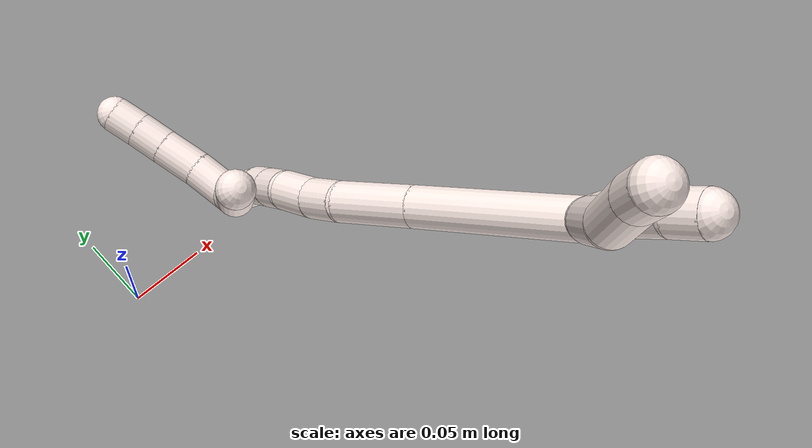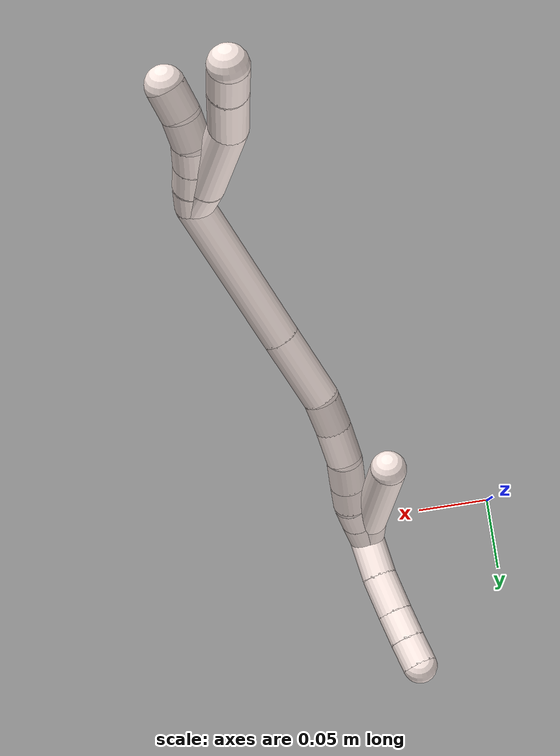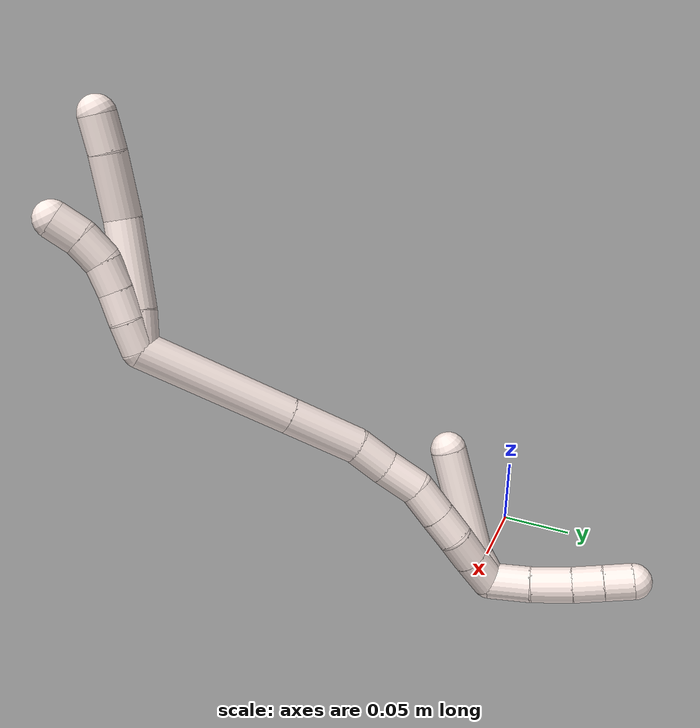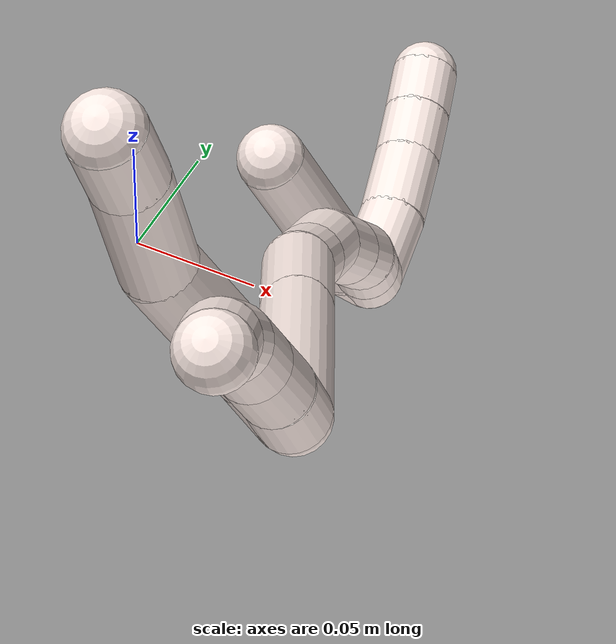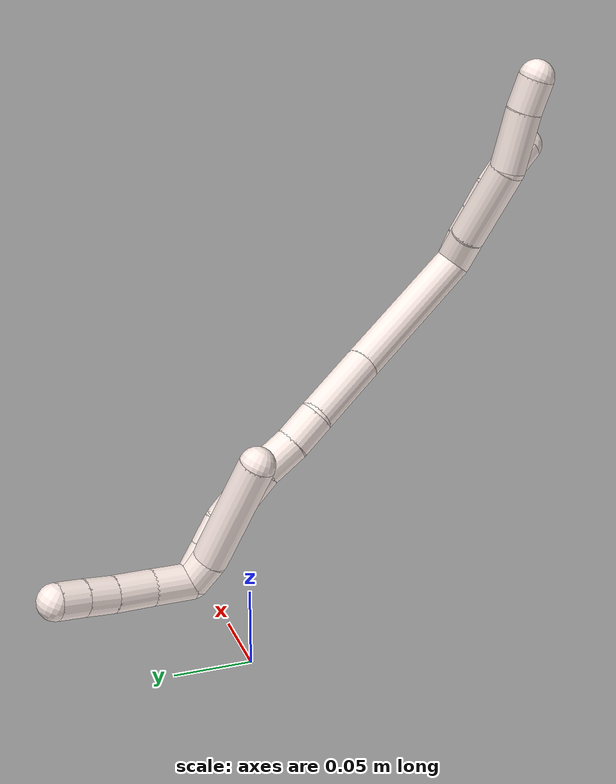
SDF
<sdf version="1.7">
 <world name="default">
  <model name="11">
   <static>0</static>
   <link name="11">
    <collision name="collision-cylinder-e_1_2_8">
     <pose>-0.004346 0.00395 0.010787 -0.351019 -0.361717 0.064831</pose>
     <geometry><cylinder><radius>0.0125</radius><length>0.024563</length></cylinder></geometry>
     <surface>
      <friction><ode><mu>1.16</mu><mu2>1.16</mu2><slip1>0</slip1><slip2>0</slip2></ode></friction>
      <contact><ode><kp>1e+06</kp><kd>1</kd><max_vel>0</max_vel><min_depth>0.001</min_depth></ode></contact>
     </surface>
    </collision>
    <visual name="visual-cylinder-e_1_2_8">
     <pose>-0.004346 0.00395 0.010787 -0.351019 -0.361717 0.064831</pose>
     <geometry><cylinder><radius>0.0125</radius><length>0.024563</length></cylinder></geometry>
     <material><ambient>1 0.933333 0.909804 1</ambient></material>
    </visual>
    <collision name="collision-cylinder-e_2_8_9">
     <pose>-0.017863 0.015188 0.04871 -0.262392 -0.315467 0.04197</pose>
     <geometry><cylinder><radius>0.0125</radius><length>0.059114</length></cylinder></geometry>
     <surface>
      <friction><ode><mu>1.16</mu><mu2>1.16</mu2><slip1>0</slip1><slip2>0</slip2></ode></friction>
      <contact><ode><kp>1e+06</kp><kd>1</kd><max_vel>0</max_vel><min_depth>0.001</min_depth></ode></contact>
     </surface>
    </collision>
    <visual name="visual-cylinder-e_2_8_9">
     <pose>-0.017863 0.015188 0.04871 -0.262392 -0.315467 0.04197</pose>
     <geometry><cylinder><radius>0.0125</radius><length>0.059114</length></cylinder></geometry>
     <material><ambient>1 0.933333 0.909804 1</ambient></material>
    </visual>
    <collision name="collision-cylinder-e_3_9_10">
     <pose>-0.027467 0.028887 0.096122 -0.306222 -0.020416 0.003151</pose>
     <geometry><cylinder><radius>0.0125</radius><length>0.042538</length></cylinder></geometry>
     <surface>
      <friction><ode><mu>1.16</mu><mu2>1.16</mu2><slip1>0</slip1><slip2>0</slip2></ode></friction>
      <contact><ode><kp>1e+06</kp><kd>1</kd><max_vel>0</max_vel><min_depth>0.001</min_depth></ode></contact>
     </surface>
    </collision>
    <visual name="visual-cylinder-e_3_9_10">
     <pose>-0.027467 0.028887 0.096122 -0.306222 -0.020416 0.003151</pose>
     <geometry><cylinder><radius>0.0125</radius><length>0.042538</length></cylinder></geometry>
     <material><ambient>1 0.933333 0.909804 1</ambient></material>
    </visual>
    <collision name="collision-cylinder-e_4_10_6">
     <pose>-0.028742 0.03807 0.127931 -0.235915 -0.0707 0.008382</pose>
     <geometry><cylinder><radius>0.0125</radius><length>0.023784</length></cylinder></geometry>
     <surface>
      <friction><ode><mu>1.16</mu><mu2>1.16</mu2><slip1>0</slip1><slip2>0</slip2></ode></friction>
      <contact><ode><kp>1e+06</kp><kd>1</kd><max_vel>0</max_vel><min_depth>0.001</min_depth></ode></contact>
     </surface>
    </collision>
    <visual name="visual-cylinder-e_4_10_6">
     <pose>-0.028742 0.03807 0.127931 -0.235915 -0.0707 0.008382</pose>
     <geometry><cylinder><radius>0.0125</radius><length>0.023784</length></cylinder></geometry>
     <material><ambient>1 0.933333 0.909804 1</ambient></material>
    </visual>
    <collision name="collision-cylinder-e_1_2_11">
     <pose>-0.000699 0.001073 0.009918 -0.107804 -0.069938 0.003775</pose>
     <geometry><cylinder><radius>0.0125</radius><length>0.02</length></cylinder></geometry>
     <surface>
      <friction><ode><mu>1.16</mu><mu2>1.16</mu2><slip1>0</slip1><slip2>0</slip2></ode></friction>
      <contact><ode><kp>1e+06</kp><kd>1</kd><max_vel>0</max_vel><min_depth>0.001</min_depth></ode></contact>
     </surface>
    </collision>
    <visual name="visual-cylinder-e_1_2_11">
     <pose>-0.000699 0.001073 0.009918 -0.107804 -0.069938 0.003775</pose>
     <geometry><cylinder><radius>0.0125</radius><length>0.02</length></cylinder></geometry>
     <material><ambient>1 0.933333 0.909804 1</ambient></material>
    </visual>
    <collision name="collision-cylinder-e_2_11_12">
     <pose>-0.003108 0.003208 0.029631 -0.107897 -0.171904 0.009306</pose>
     <geometry><cylinder><radius>0.0125</radius><length>0.02</length></cylinder></geometry>
     <surface>
      <friction><ode><mu>1.16</mu><mu2>1.16</mu2><slip1>0</slip1><slip2>0</slip2></ode></friction>
      <contact><ode><kp>1e+06</kp><kd>1</kd><max_vel>0</max_vel><min_depth>0.001</min_depth></ode></contact>
     </surface>
    </collision>
    <visual name="visual-cylinder-e_2_11_12">
     <pose>-0.003108 0.003208 0.029631 -0.107897 -0.171904 0.009306</pose>
     <geometry><cylinder><radius>0.0125</radius><length>0.02</length></cylinder></geometry>
     <material><ambient>1 0.933333 0.909804 1</ambient></material>
    </visual>
    <collision name="collision-cylinder-e_3_12_13">
     <pose>-0.005922 0.004738 0.049354 -0.047252 -0.110542 0.002615</pose>
     <geometry><cylinder><radius>0.0125</radius><length>0.02</length></cylinder></geometry>
     <surface>
      <friction><ode><mu>1.16</mu><mu2>1.16</mu2><slip1>0</slip1><slip2>0</slip2></ode></friction>
      <contact><ode><kp>1e+06</kp><kd>1</kd><max_vel>0</max_vel><min_depth>0.001</min_depth></ode></contact>
     </surface>
    </collision>
    <visual name="visual-cylinder-e_3_12_13">
     <pose>-0.005922 0.004738 0.049354 -0.047252 -0.110542 0.002615</pose>
     <geometry><cylinder><radius>0.0125</radius><length>0.02</length></cylinder></geometry>
     <material><ambient>1 0.933333 0.909804 1</ambient></material>
    </visual>
    <collision name="collision-cylinder-e_4_13_14">
     <pose>-0.006619 0.00279 0.068977 0.244359 0.040585 0.004984</pose>
     <geometry><cylinder><radius>0.0125</radius><length>0.02</length></cylinder></geometry>
     <surface>
      <friction><ode><mu>1.16</mu><mu2>1.16</mu2><slip1>0</slip1><slip2>0</slip2></ode></friction>
      <contact><ode><kp>1e+06</kp><kd>1</kd><max_vel>0</max_vel><min_depth>0.001</min_depth></ode></contact>
     </surface>
    </collision>
    <visual name="visual-cylinder-e_4_13_14">
     <pose>-0.006619 0.00279 0.068977 0.244359 0.040585 0.004984</pose>
     <geometry><cylinder><radius>0.0125</radius><length>0.02</length></cylinder></geometry>
     <material><ambient>1 0.933333 0.909804 1</ambient></material>
    </visual>
    <collision name="collision-cylinder-e_5_14_5">
     <pose>-0.00481 -0.00403 0.08754 0.460817 0.140812 0.033083</pose>
     <geometry><cylinder><radius>0.0125</radius><length>0.02</length></cylinder></geometry>
     <surface>
      <friction><ode><mu>1.16</mu><mu2>1.16</mu2><slip1>0</slip1><slip2>0</slip2></ode></friction>
      <contact><ode><kp>1e+06</kp><kd>1</kd><max_vel>0</max_vel><min_depth>0.001</min_depth></ode></contact>
     </surface>
    </collision>
    <visual name="visual-cylinder-e_5_14_5">
     <pose>-0.00481 -0.00403 0.08754 0.460817 0.140812 0.033083</pose>
     <geometry><cylinder><radius>0.0125</radius><length>0.02</length></cylinder></geometry>
     <material><ambient>1 0.933333 0.909804 1</ambient></material>
    </visual>
    <collision name="collision-cylinder-e_1_2_15">
     <pose>-0.010306 0.029604 -0.043236 -2.54121 -0.194197 0.609723</pose>
     <geometry><cylinder><radius>0.0125</radius><length>0.106807</length></cylinder></geometry>
     <surface>
      <friction><ode><mu>1.16</mu><mu2>1.16</mu2><slip1>0</slip1><slip2>0</slip2></ode></friction>
      <contact><ode><kp>1e+06</kp><kd>1</kd><max_vel>0</max_vel><min_depth>0.001</min_depth></ode></contact>
     </surface>
    </collision>
    <visual name="visual-cylinder-e_1_2_15">
     <pose>-0.010306 0.029604 -0.043236 -2.54121 -0.194197 0.609723</pose>
     <geometry><cylinder><radius>0.0125</radius><length>0.106807</length></cylinder></geometry>
     <material><ambient>1 0.933333 0.909804 1</ambient></material>
    </visual>
    <collision name="collision-cylinder-e_2_15_16">
     <pose>-0.025712 0.073516 -0.107496 -2.54402 -0.197935 0.623698</pose>
     <geometry><cylinder><radius>0.0125</radius><length>0.051875</length></cylinder></geometry>
     <surface>
      <friction><ode><mu>1.16</mu><mu2>1.16</mu2><slip1>0</slip1><slip2>0</slip2></ode></friction>
      <contact><ode><kp>1e+06</kp><kd>1</kd><max_vel>0</max_vel><min_depth>0.001</min_depth></ode></contact>
     </surface>
    </collision>
    <visual name="visual-cylinder-e_2_15_16">
     <pose>-0.025712 0.073516 -0.107496 -2.54402 -0.197935 0.623698</pose>
     <geometry><cylinder><radius>0.0125</radius><length>0.051875</length></cylinder></geometry>
     <material><ambient>1 0.933333 0.909804 1</ambient></material>
    </visual>
    <collision name="collision-cylinder-e_3_16_17">
     <pose>-0.031461 0.093011 -0.13995 -2.71559 -0.051626 0.237626</pose>
     <geometry><cylinder><radius>0.0125</radius><length>0.025136</length></cylinder></geometry>
     <surface>
      <friction><ode><mu>1.16</mu><mu2>1.16</mu2><slip1>0</slip1><slip2>0</slip2></ode></friction>
      <contact><ode><kp>1e+06</kp><kd>1</kd><max_vel>0</max_vel><min_depth>0.001</min_depth></ode></contact>
     </surface>
    </collision>
    <visual name="visual-cylinder-e_3_16_17">
     <pose>-0.031461 0.093011 -0.13995 -2.71559 -0.051626 0.237626</pose>
     <geometry><cylinder><radius>0.0125</radius><length>0.025136</length></cylinder></geometry>
     <material><ambient>1 0.933333 0.909804 1</ambient></material>
    </visual>
    <collision name="collision-cylinder-e_4_17_18">
     <pose>-0.031887 0.10474 -0.162915 -2.6257 0.016801 -0.063661</pose>
     <geometry><cylinder><radius>0.0125</radius><length>0.026527</length></cylinder></geometry>
     <surface>
      <friction><ode><mu>1.16</mu><mu2>1.16</mu2><slip1>0</slip1><slip2>0</slip2></ode></friction>
      <contact><ode><kp>1e+06</kp><kd>1</kd><max_vel>0</max_vel><min_depth>0.001</min_depth></ode></contact>
     </surface>
    </collision>
    <visual name="visual-cylinder-e_4_17_18">
     <pose>-0.031887 0.10474 -0.162915 -2.6257 0.016801 -0.063661</pose>
     <geometry><cylinder><radius>0.0125</radius><length>0.026527</length></cylinder></geometry>
     <material><ambient>1 0.933333 0.909804 1</ambient></material>
    </visual>
    <collision name="collision-cylinder-e_5_18_19">
     <pose>-0.030455 0.113767 -0.186304 -2.9349 0.09951 -0.895225</pose>
     <geometry><cylinder><radius>0.0125</radius><length>0.024344</length></cylinder></geometry>
     <surface>
      <friction><ode><mu>1.16</mu><mu2>1.16</mu2><slip1>0</slip1><slip2>0</slip2></ode></friction>
      <contact><ode><kp>1e+06</kp><kd>1</kd><max_vel>0</max_vel><min_depth>0.001</min_depth></ode></contact>
     </surface>
    </collision>
    <visual name="visual-cylinder-e_5_18_19">
     <pose>-0.030455 0.113767 -0.186304 -2.9349 0.09951 -0.895225</pose>
     <geometry><cylinder><radius>0.0125</radius><length>0.024344</length></cylinder></geometry>
     <material><ambient>1 0.933333 0.909804 1</ambient></material>
    </visual>
    <collision name="collision-cylinder-e_6_19_20">
     <pose>-0.028367 0.118443 -0.208097 -2.92475 0.08608 -0.753502</pose>
     <geometry><cylinder><radius>0.0125</radius><length>0.02043</length></cylinder></geometry>
     <surface>
      <friction><ode><mu>1.16</mu><mu2>1.16</mu2><slip1>0</slip1><slip2>0</slip2></ode></friction>
      <contact><ode><kp>1e+06</kp><kd>1</kd><max_vel>0</max_vel><min_depth>0.001</min_depth></ode></contact>
     </surface>
    </collision>
    <visual name="visual-cylinder-e_6_19_20">
     <pose>-0.028367 0.118443 -0.208097 -2.92475 0.08608 -0.753502</pose>
     <geometry><cylinder><radius>0.0125</radius><length>0.02043</length></cylinder></geometry>
     <material><ambient>1 0.933333 0.909804 1</ambient></material>
    </visual>
    <collision name="collision-cylinder-e_7_20_21">
     <pose>-0.028578 0.121918 -0.228267 -3.0166 -0.105225 1.39911</pose>
     <geometry><cylinder><radius>0.0125</radius><length>0.020737</length></cylinder></geometry>
     <surface>
      <friction><ode><mu>1.16</mu><mu2>1.16</mu2><slip1>0</slip1><slip2>0</slip2></ode></friction>
      <contact><ode><kp>1e+06</kp><kd>1</kd><max_vel>0</max_vel><min_depth>0.001</min_depth></ode></contact>
     </surface>
    </collision>
    <visual name="visual-cylinder-e_7_20_21">
     <pose>-0.028578 0.121918 -0.228267 -3.0166 -0.105225 1.39911</pose>
     <geometry><cylinder><radius>0.0125</radius><length>0.020737</length></cylinder></geometry>
     <material><ambient>1 0.933333 0.909804 1</ambient></material>
    </visual>
    <collision name="collision-cylinder-e_8_21_1">
     <pose>-0.031072 0.125102 -0.250336 -2.98258 -0.116642 1.26485</pose>
     <geometry><cylinder><radius>0.0125</radius><length>0.024144</length></cylinder></geometry>
     <surface>
      <friction><ode><mu>1.16</mu><mu2>1.16</mu2><slip1>0</slip1><slip2>0</slip2></ode></friction>
      <contact><ode><kp>1e+06</kp><kd>1</kd><max_vel>0</max_vel><min_depth>0.001</min_depth></ode></contact>
     </surface>
    </collision>
    <visual name="visual-cylinder-e_8_21_1">
     <pose>-0.031072 0.125102 -0.250336 -2.98258 -0.116642 1.26485</pose>
     <geometry><cylinder><radius>0.0125</radius><length>0.024144</length></cylinder></geometry>
     <material><ambient>1 0.933333 0.909804 1</ambient></material>
    </visual>
    <collision name="collision-cylinder-e_1_1_22">
     <pose>-0.030233 0.140396 -0.267968 -1.97899 0.152575 -0.231628</pose>
     <geometry><cylinder><radius>0.0125</radius><length>0.029533</length></cylinder></geometry>
     <surface>
      <friction><ode><mu>1.16</mu><mu2>1.16</mu2><slip1>0</slip1><slip2>0</slip2></ode></friction>
      <contact><ode><kp>1e+06</kp><kd>1</kd><max_vel>0</max_vel><min_depth>0.001</min_depth></ode></contact>
     </surface>
    </collision>
    <visual name="visual-cylinder-e_1_1_22">
     <pose>-0.030233 0.140396 -0.267968 -1.97899 0.152575 -0.231628</pose>
     <geometry><cylinder><radius>0.0125</radius><length>0.029533</length></cylinder></geometry>
     <material><ambient>1 0.933333 0.909804 1</ambient></material>
    </visual>
    <collision name="collision-cylinder-e_2_22_23">
     <pose>-0.027 0.167197 -0.278757 -1.92753 0.06897 -0.099266</pose>
     <geometry><cylinder><radius>0.0125</radius><length>0.028679</length></cylinder></geometry>
     <surface>
      <friction><ode><mu>1.16</mu><mu2>1.16</mu2><slip1>0</slip1><slip2>0</slip2></ode></friction>
      <contact><ode><kp>1e+06</kp><kd>1</kd><max_vel>0</max_vel><min_depth>0.001</min_depth></ode></contact>
     </surface>
    </collision>
    <visual name="visual-cylinder-e_2_22_23">
     <pose>-0.027 0.167197 -0.278757 -1.92753 0.06897 -0.099266</pose>
     <geometry><cylinder><radius>0.0125</radius><length>0.028679</length></cylinder></geometry>
     <material><ambient>1 0.933333 0.909804 1</ambient></material>
    </visual>
    <collision name="collision-cylinder-e_3_23_24">
     <pose>-0.025382 0.190915 -0.286798 -1.85786 0.058519 -0.078274</pose>
     <geometry><cylinder><radius>0.0125</radius><length>0.021545</length></cylinder></geometry>
     <surface>
      <friction><ode><mu>1.16</mu><mu2>1.16</mu2><slip1>0</slip1><slip2>0</slip2></ode></friction>
      <contact><ode><kp>1e+06</kp><kd>1</kd><max_vel>0</max_vel><min_depth>0.001</min_depth></ode></contact>
     </surface>
    </collision>
    <visual name="visual-cylinder-e_3_23_24">
     <pose>-0.025382 0.190915 -0.286798 -1.85786 0.058519 -0.078274</pose>
     <geometry><cylinder><radius>0.0125</radius><length>0.021545</length></cylinder></geometry>
     <material><ambient>1 0.933333 0.909804 1</ambient></material>
    </visual>
    <collision name="collision-cylinder-e_4_24_4">
     <pose>-0.024365 0.210903 -0.292793 -1.86681 0.038216 -0.051604</pose>
     <geometry><cylinder><radius>0.0125</radius><length>0.020244</length></cylinder></geometry>
     <surface>
      <friction><ode><mu>1.16</mu><mu2>1.16</mu2><slip1>0</slip1><slip2>0</slip2></ode></friction>
      <contact><ode><kp>1e+06</kp><kd>1</kd><max_vel>0</max_vel><min_depth>0.001</min_depth></ode></contact>
     </surface>
    </collision>
    <visual name="visual-cylinder-e_4_24_4">
     <pose>-0.024365 0.210903 -0.292793 -1.86681 0.038216 -0.051604</pose>
     <geometry><cylinder><radius>0.0125</radius><length>0.020244</length></cylinder></geometry>
     <material><ambient>1 0.933333 0.909804 1</ambient></material>
    </visual>
    <collision name="collision-cylinder-e_1_1_25">
     <pose>-0.034982 0.126221 -0.252213 0.078071 -0.245695 -0.009644</pose>
     <geometry><cylinder><radius>0.0125</radius><length>0.020602</length></cylinder></geometry>
     <surface>
      <friction><ode><mu>1.16</mu><mu2>1.16</mu2><slip1>0</slip1><slip2>0</slip2></ode></friction>
      <contact><ode><kp>1e+06</kp><kd>1</kd><max_vel>0</max_vel><min_depth>0.001</min_depth></ode></contact>
     </surface>
    </collision>
    <visual name="visual-cylinder-e_1_1_25">
     <pose>-0.034982 0.126221 -0.252213 0.078071 -0.245695 -0.009644</pose>
     <geometry><cylinder><radius>0.0125</radius><length>0.020602</length></cylinder></geometry>
     <material><ambient>1 0.933333 0.909804 1</ambient></material>
    </visual>
    <collision name="collision-cylinder-e_2_25_3">
     <pose>-0.044837 0.132276 -0.203843 -0.176099 -0.186181 0.016483</pose>
     <geometry><cylinder><radius>0.0125</radius><length>0.079398</length></cylinder></geometry>
     <surface>
      <friction><ode><mu>1.16</mu><mu2>1.16</mu2><slip1>0</slip1><slip2>0</slip2></ode></friction>
      <contact><ode><kp>1e+06</kp><kd>1</kd><max_vel>0</max_vel><min_depth>0.001</min_depth></ode></contact>
     </surface>
    </collision>
    <visual name="visual-cylinder-e_2_25_3">
     <pose>-0.044837 0.132276 -0.203843 -0.176099 -0.186181 0.016483</pose>
     <geometry><cylinder><radius>0.0125</radius><length>0.079398</length></cylinder></geometry>
     <material><ambient>1 0.933333 0.909804 1</ambient></material>
    </visual>
    <collision name="collision-sphere-3">
     <pose>-0.052185 0.139111 -0.165433 0 -0 0</pose>
     <geometry><sphere><radius>0.0125</radius></sphere></geometry>
     <surface>
      <friction><ode><mu>1.16</mu><mu2>1.16</mu2><slip1>0</slip1><slip2>0</slip2></ode></friction>
      <contact><ode><kp>1e+06</kp><kd>1</kd><max_vel>0</max_vel><min_depth>0.001</min_depth></ode></contact>
     </surface>
    </collision>
    <visual name="visual-sphere-3">
     <pose>-0.052185 0.139111 -0.165433 0 -0 0</pose>
     <geometry><sphere><radius>0.0125</radius></sphere></geometry>
     <material><ambient>1 0.933333 0.909804 1</ambient></material>
    </visual>
    <collision name="collision-sphere-25">
     <pose>-0.037488 0.125442 -0.242252 0 -0 0</pose>
     <geometry><sphere><radius>0.0125</radius></sphere></geometry>
     <surface>
      <friction><ode><mu>1.16</mu><mu2>1.16</mu2><slip1>0</slip1><slip2>0</slip2></ode></friction>
      <contact><ode><kp>1e+06</kp><kd>1</kd><max_vel>0</max_vel><min_depth>0.001</min_depth></ode></contact>
     </surface>
    </collision>
    <visual name="visual-sphere-25">
     <pose>-0.037488 0.125442 -0.242252 0 -0 0</pose>
     <geometry><sphere><radius>0.0125</radius></sphere></geometry>
     <material><ambient>1 0.933333 0.909804 1</ambient></material>
    </visual>
    <collision name="collision-sphere-4">
     <pose>-0.023978 0.220578 -0.295743 0 -0 0</pose>
     <geometry><sphere><radius>0.0125</radius></sphere></geometry>
     <surface>
      <friction><ode><mu>1.16</mu><mu2>1.16</mu2><slip1>0</slip1><slip2>0</slip2></ode></friction>
      <contact><ode><kp>1e+06</kp><kd>1</kd><max_vel>0</max_vel><min_depth>0.001</min_depth></ode></contact>
     </surface>
    </collision>
    <visual name="visual-sphere-4">
     <pose>-0.023978 0.220578 -0.295743 0 -0 0</pose>
     <geometry><sphere><radius>0.0125</radius></sphere></geometry>
     <material><ambient>1 0.933333 0.909804 1</ambient></material>
    </visual>
    <collision name="collision-sphere-24">
     <pose>-0.024752 0.201229 -0.289842 0 -0 0</pose>
     <geometry><sphere><radius>0.0125</radius></sphere></geometry>
     <surface>
      <friction><ode><mu>1.16</mu><mu2>1.16</mu2><slip1>0</slip1><slip2>0</slip2></ode></friction>
      <contact><ode><kp>1e+06</kp><kd>1</kd><max_vel>0</max_vel><min_depth>0.001</min_depth></ode></contact>
     </surface>
    </collision>
    <visual name="visual-sphere-24">
     <pose>-0.024752 0.201229 -0.289842 0 -0 0</pose>
     <geometry><sphere><radius>0.0125</radius></sphere></geometry>
     <material><ambient>1 0.933333 0.909804 1</ambient></material>
    </visual>
    <collision name="collision-sphere-23">
     <pose>-0.026012 0.180601 -0.283753 0 -0 0</pose>
     <geometry><sphere><radius>0.0125</radius></sphere></geometry>
     <surface>
      <friction><ode><mu>1.16</mu><mu2>1.16</mu2><slip1>0</slip1><slip2>0</slip2></ode></friction>
      <contact><ode><kp>1e+06</kp><kd>1</kd><max_vel>0</max_vel><min_depth>0.001</min_depth></ode></contact>
     </surface>
    </collision>
    <visual name="visual-sphere-23">
     <pose>-0.026012 0.180601 -0.283753 0 -0 0</pose>
     <geometry><sphere><radius>0.0125</radius></sphere></geometry>
     <material><ambient>1 0.933333 0.909804 1</ambient></material>
    </visual>
    <collision name="collision-sphere-22">
     <pose>-0.027988 0.153792 -0.273762 0 -0 0</pose>
     <geometry><sphere><radius>0.0125</radius></sphere></geometry>
     <surface>
      <friction><ode><mu>1.16</mu><mu2>1.16</mu2><slip1>0</slip1><slip2>0</slip2></ode></friction>
      <contact><ode><kp>1e+06</kp><kd>1</kd><max_vel>0</max_vel><min_depth>0.001</min_depth></ode></contact>
     </surface>
    </collision>
    <visual name="visual-sphere-22">
     <pose>-0.027988 0.153792 -0.273762 0 -0 0</pose>
     <geometry><sphere><radius>0.0125</radius></sphere></geometry>
     <material><ambient>1 0.933333 0.909804 1</ambient></material>
    </visual>
    <collision name="collision-sphere-1">
     <pose>-0.032477 0.127 -0.262175 0 -0 0</pose>
     <geometry><sphere><radius>0.0125</radius></sphere></geometry>
     <surface>
      <friction><ode><mu>1.16</mu><mu2>1.16</mu2><slip1>0</slip1><slip2>0</slip2></ode></friction>
      <contact><ode><kp>1e+06</kp><kd>1</kd><max_vel>0</max_vel><min_depth>0.001</min_depth></ode></contact>
     </surface>
    </collision>
    <visual name="visual-sphere-1">
     <pose>-0.032477 0.127 -0.262175 0 -0 0</pose>
     <geometry><sphere><radius>0.0125</radius></sphere></geometry>
     <material><ambient>1 0.933333 0.909804 1</ambient></material>
    </visual>
    <collision name="collision-sphere-21">
     <pose>-0.029667 0.123203 -0.238497 0 -0 0</pose>
     <geometry><sphere><radius>0.0125</radius></sphere></geometry>
     <surface>
      <friction><ode><mu>1.16</mu><mu2>1.16</mu2><slip1>0</slip1><slip2>0</slip2></ode></friction>
      <contact><ode><kp>1e+06</kp><kd>1</kd><max_vel>0</max_vel><min_depth>0.001</min_depth></ode></contact>
     </surface>
    </collision>
    <visual name="visual-sphere-21">
     <pose>-0.029667 0.123203 -0.238497 0 -0 0</pose>
     <geometry><sphere><radius>0.0125</radius></sphere></geometry>
     <material><ambient>1 0.933333 0.909804 1</ambient></material>
    </visual>
    <collision name="collision-sphere-11">
     <pose>-0.001398 0.002147 0.019835 0 -0 0</pose>
     <geometry><sphere><radius>0.0125</radius></sphere></geometry>
     <surface>
      <friction><ode><mu>1.16</mu><mu2>1.16</mu2><slip1>0</slip1><slip2>0</slip2></ode></friction>
      <contact><ode><kp>1e+06</kp><kd>1</kd><max_vel>0</max_vel><min_depth>0.001</min_depth></ode></contact>
     </surface>
    </collision>
    <visual name="visual-sphere-11">
     <pose>-0.001398 0.002147 0.019835 0 -0 0</pose>
     <geometry><sphere><radius>0.0125</radius></sphere></geometry>
     <material><ambient>1 0.933333 0.909804 1</ambient></material>
    </visual>
    <collision name="collision-sphere-6">
     <pose>-0.029582 0.040843 0.139465 0 -0 0</pose>
     <geometry><sphere><radius>0.0125</radius></sphere></geometry>
     <surface>
      <friction><ode><mu>1.16</mu><mu2>1.16</mu2><slip1>0</slip1><slip2>0</slip2></ode></friction>
      <contact><ode><kp>1e+06</kp><kd>1</kd><max_vel>0</max_vel><min_depth>0.001</min_depth></ode></contact>
     </surface>
    </collision>
    <visual name="visual-sphere-6">
     <pose>-0.029582 0.040843 0.139465 0 -0 0</pose>
     <geometry><sphere><radius>0.0125</radius></sphere></geometry>
     <material><ambient>1 0.933333 0.909804 1</ambient></material>
    </visual>
    <collision name="collision-sphere-10">
     <pose>-0.027902 0.035298 0.116397 0 -0 0</pose>
     <geometry><sphere><radius>0.0125</radius></sphere></geometry>
     <surface>
      <friction><ode><mu>1.16</mu><mu2>1.16</mu2><slip1>0</slip1><slip2>0</slip2></ode></friction>
      <contact><ode><kp>1e+06</kp><kd>1</kd><max_vel>0</max_vel><min_depth>0.001</min_depth></ode></contact>
     </surface>
    </collision>
    <visual name="visual-sphere-10">
     <pose>-0.027902 0.035298 0.116397 0 -0 0</pose>
     <geometry><sphere><radius>0.0125</radius></sphere></geometry>
     <material><ambient>1 0.933333 0.909804 1</ambient></material>
    </visual>
    <collision name="collision-sphere-9">
     <pose>-0.027033 0.022477 0.075846 0 -0 0</pose>
     <geometry><sphere><radius>0.0125</radius></sphere></geometry>
     <surface>
      <friction><ode><mu>1.16</mu><mu2>1.16</mu2><slip1>0</slip1><slip2>0</slip2></ode></friction>
      <contact><ode><kp>1e+06</kp><kd>1</kd><max_vel>0</max_vel><min_depth>0.001</min_depth></ode></contact>
     </surface>
    </collision>
    <visual name="visual-sphere-9">
     <pose>-0.027033 0.022477 0.075846 0 -0 0</pose>
     <geometry><sphere><radius>0.0125</radius></sphere></geometry>
     <material><ambient>1 0.933333 0.909804 1</ambient></material>
    </visual>
    <collision name="collision-sphere-2">
     <geometry><sphere><radius>0.0125</radius></sphere></geometry>
     <surface>
      <friction><ode><mu>1.16</mu><mu2>1.16</mu2><slip1>0</slip1><slip2>0</slip2></ode></friction>
      <contact><ode><kp>1e+06</kp><kd>1</kd><max_vel>0</max_vel><min_depth>0.001</min_depth></ode></contact>
     </surface>
    </collision>
    <visual name="visual-sphere-2">
     <geometry><sphere><radius>0.0125</radius></sphere></geometry>
     <material><ambient>1 0.933333 0.909804 1</ambient></material>
    </visual>
    <collision name="collision-sphere-19">
     <pose>-0.029245 0.116253 -0.198158 0 -0 0</pose>
     <geometry><sphere><radius>0.0125</radius></sphere></geometry>
     <surface>
      <friction><ode><mu>1.16</mu><mu2>1.16</mu2><slip1>0</slip1><slip2>0</slip2></ode></friction>
      <contact><ode><kp>1e+06</kp><kd>1</kd><max_vel>0</max_vel><min_depth>0.001</min_depth></ode></contact>
     </surface>
    </collision>
    <visual name="visual-sphere-19">
     <pose>-0.029245 0.116253 -0.198158 0 -0 0</pose>
     <geometry><sphere><radius>0.0125</radius></sphere></geometry>
     <material><ambient>1 0.933333 0.909804 1</ambient></material>
    </visual>
    <collision name="collision-sphere-8">
     <pose>-0.008693 0.0079 0.021573 0 -0 0</pose>
     <geometry><sphere><radius>0.0125</radius></sphere></geometry>
     <surface>
      <friction><ode><mu>1.16</mu><mu2>1.16</mu2><slip1>0</slip1><slip2>0</slip2></ode></friction>
      <contact><ode><kp>1e+06</kp><kd>1</kd><max_vel>0</max_vel><min_depth>0.001</min_depth></ode></contact>
     </surface>
    </collision>
    <visual name="visual-sphere-8">
     <pose>-0.008693 0.0079 0.021573 0 -0 0</pose>
     <geometry><sphere><radius>0.0125</radius></sphere></geometry>
     <material><ambient>1 0.933333 0.909804 1</ambient></material>
    </visual>
    <collision name="collision-sphere-12">
     <pose>-0.004819 0.004269 0.039426 0 -0 0</pose>
     <geometry><sphere><radius>0.0125</radius></sphere></geometry>
     <surface>
      <friction><ode><mu>1.16</mu><mu2>1.16</mu2><slip1>0</slip1><slip2>0</slip2></ode></friction>
      <contact><ode><kp>1e+06</kp><kd>1</kd><max_vel>0</max_vel><min_depth>0.001</min_depth></ode></contact>
     </surface>
    </collision>
    <visual name="visual-sphere-12">
     <pose>-0.004819 0.004269 0.039426 0 -0 0</pose>
     <geometry><sphere><radius>0.0125</radius></sphere></geometry>
     <material><ambient>1 0.933333 0.909804 1</ambient></material>
    </visual>
    <collision name="collision-sphere-13">
     <pose>-0.007025 0.005208 0.059282 0 -0 0</pose>
     <geometry><sphere><radius>0.0125</radius></sphere></geometry>
     <surface>
      <friction><ode><mu>1.16</mu><mu2>1.16</mu2><slip1>0</slip1><slip2>0</slip2></ode></friction>
      <contact><ode><kp>1e+06</kp><kd>1</kd><max_vel>0</max_vel><min_depth>0.001</min_depth></ode></contact>
     </surface>
    </collision>
    <visual name="visual-sphere-13">
     <pose>-0.007025 0.005208 0.059282 0 -0 0</pose>
     <geometry><sphere><radius>0.0125</radius></sphere></geometry>
     <material><ambient>1 0.933333 0.909804 1</ambient></material>
    </visual>
    <collision name="collision-sphere-14">
     <pose>-0.006214 0.000373 0.078672 0 -0 0</pose>
     <geometry><sphere><radius>0.0125</radius></sphere></geometry>
     <surface>
      <friction><ode><mu>1.16</mu><mu2>1.16</mu2><slip1>0</slip1><slip2>0</slip2></ode></friction>
      <contact><ode><kp>1e+06</kp><kd>1</kd><max_vel>0</max_vel><min_depth>0.001</min_depth></ode></contact>
     </surface>
    </collision>
    <visual name="visual-sphere-14">
     <pose>-0.006214 0.000373 0.078672 0 -0 0</pose>
     <geometry><sphere><radius>0.0125</radius></sphere></geometry>
     <material><ambient>1 0.933333 0.909804 1</ambient></material>
    </visual>
    <collision name="collision-sphere-5">
     <pose>-0.003407 -0.008433 0.096408 0 -0 0</pose>
     <geometry><sphere><radius>0.0125</radius></sphere></geometry>
     <surface>
      <friction><ode><mu>1.16</mu><mu2>1.16</mu2><slip1>0</slip1><slip2>0</slip2></ode></friction>
      <contact><ode><kp>1e+06</kp><kd>1</kd><max_vel>0</max_vel><min_depth>0.001</min_depth></ode></contact>
     </surface>
    </collision>
    <visual name="visual-sphere-5">
     <pose>-0.003407 -0.008433 0.096408 0 -0 0</pose>
     <geometry><sphere><radius>0.0125</radius></sphere></geometry>
     <material><ambient>1 0.933333 0.909804 1</ambient></material>
    </visual>
    <collision name="collision-sphere-15">
     <pose>-0.020612 0.059207 -0.086472 0 -0 0</pose>
     <geometry><sphere><radius>0.0125</radius></sphere></geometry>
     <surface>
      <friction><ode><mu>1.16</mu><mu2>1.16</mu2><slip1>0</slip1><slip2>0</slip2></ode></friction>
      <contact><ode><kp>1e+06</kp><kd>1</kd><max_vel>0</max_vel><min_depth>0.001</min_depth></ode></contact>
     </surface>
    </collision>
    <visual name="visual-sphere-15">
     <pose>-0.020612 0.059207 -0.086472 0 -0 0</pose>
     <geometry><sphere><radius>0.0125</radius></sphere></geometry>
     <material><ambient>1 0.933333 0.909804 1</ambient></material>
    </visual>
    <collision name="collision-sphere-16">
     <pose>-0.030813 0.087824 -0.12852 0 -0 0</pose>
     <geometry><sphere><radius>0.0125</radius></sphere></geometry>
     <surface>
      <friction><ode><mu>1.16</mu><mu2>1.16</mu2><slip1>0</slip1><slip2>0</slip2></ode></friction>
      <contact><ode><kp>1e+06</kp><kd>1</kd><max_vel>0</max_vel><min_depth>0.001</min_depth></ode></contact>
     </surface>
    </collision>
    <visual name="visual-sphere-16">
     <pose>-0.030813 0.087824 -0.12852 0 -0 0</pose>
     <geometry><sphere><radius>0.0125</radius></sphere></geometry>
     <material><ambient>1 0.933333 0.909804 1</ambient></material>
    </visual>
    <collision name="collision-sphere-17">
     <pose>-0.03211 0.098198 -0.151379 0 -0 0</pose>
     <geometry><sphere><radius>0.0125</radius></sphere></geometry>
     <surface>
      <friction><ode><mu>1.16</mu><mu2>1.16</mu2><slip1>0</slip1><slip2>0</slip2></ode></friction>
      <contact><ode><kp>1e+06</kp><kd>1</kd><max_vel>0</max_vel><min_depth>0.001</min_depth></ode></contact>
     </surface>
    </collision>
    <visual name="visual-sphere-17">
     <pose>-0.03211 0.098198 -0.151379 0 -0 0</pose>
     <geometry><sphere><radius>0.0125</radius></sphere></geometry>
     <material><ambient>1 0.933333 0.909804 1</ambient></material>
    </visual>
    <collision name="collision-sphere-18">
     <pose>-0.031664 0.111282 -0.17445 0 -0 0</pose>
     <geometry><sphere><radius>0.0125</radius></sphere></geometry>
     <surface>
      <friction><ode><mu>1.16</mu><mu2>1.16</mu2><slip1>0</slip1><slip2>0</slip2></ode></friction>
      <contact><ode><kp>1e+06</kp><kd>1</kd><max_vel>0</max_vel><min_depth>0.001</min_depth></ode></contact>
     </surface>
    </collision>
    <visual name="visual-sphere-18">
     <pose>-0.031664 0.111282 -0.17445 0 -0 0</pose>
     <geometry><sphere><radius>0.0125</radius></sphere></geometry>
     <material><ambient>1 0.933333 0.909804 1</ambient></material>
    </visual>
    <collision name="collision-sphere-20">
     <pose>-0.027489 0.120632 -0.218036 0 -0 0</pose>
     <geometry><sphere><radius>0.0125</radius></sphere></geometry>
     <surface>
      <friction><ode><mu>1.16</mu><mu2>1.16</mu2><slip1>0</slip1><slip2>0</slip2></ode></friction>
      <contact><ode><kp>1e+06</kp><kd>1</kd><max_vel>0</max_vel><min_depth>0.001</min_depth></ode></contact>
     </surface>
    </collision>
    <visual name="visual-sphere-20">
     <pose>-0.027489 0.120632 -0.218036 0 -0 0</pose>
     <geometry><sphere><radius>0.0125</radius></sphere></geometry>
     <material><ambient>1 0.933333 0.909804 1</ambient></material>
    </visual>
    <inertial>
     <pose>-0.022881 0.075389 -0.095745 0 -0 0</pose>
     <mass>0.75</mass>
     <inertia><ixx>0.00026</ixx><ixy>0</ixy><ixz>0</ixz><iyy>8.9e-05</iyy><iyz>0</iyz><izz>-5.3e-05</izz></inertia>
    </inertial>
   </link>
   <pose>0.170513 -0.20486 0.190955 0.471409 -0.129659 0.304217</pose>
  </model>
 </world>
</sdf>
